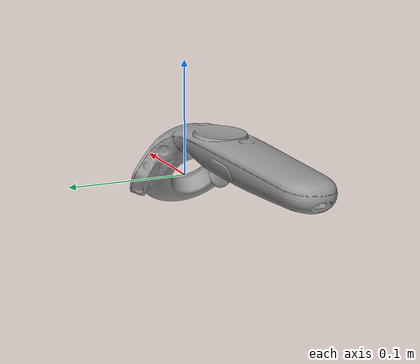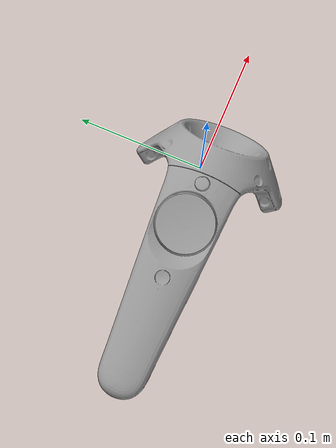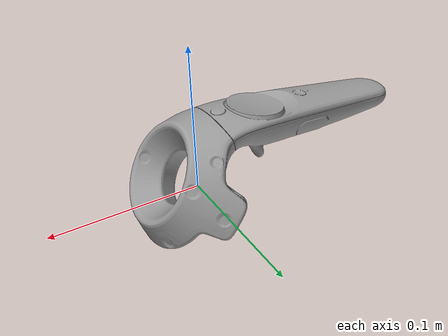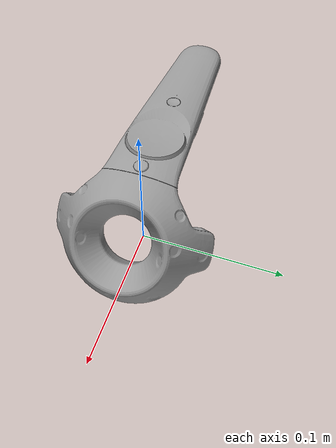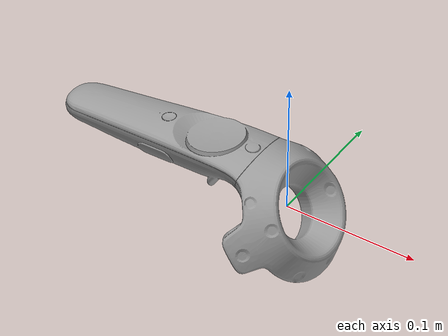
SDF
<?xml version='1.0'?>
<sdf version='1.6'>
  <model name='vr_controller_r'>
    <pose frame=''>0 0 0 0 0 0</pose>
    <static>1</static>
    <allow_auto_disable>1</allow_auto_disable>

    <link name='link'>
      <pose frame=''>0 0 0 0 -0 0</pose>
      <visual name='visual'>
        <pose frame=''>0 -0.01 0 0 -0 0</pose>
        <geometry>
          <mesh>
            <uri>model://vr_controller_r/meshes/right.dae</uri>
            <scale>1 1 1</scale>
          </mesh>
        </geometry>

        <material>
          <lighting>1</lighting>
          <script>
            <uri>file://media/materials/scripts/gazebo.material</uri>
            <name>Gazebo/Grey</name>
          </script>
          <shader type='vertex'>
            <normal_map>__default__</normal_map>
          </shader>
          <ambient>0.3 0.3 0.3 1</ambient>
          <diffuse>0.7 0.7 0.7 1</diffuse>
          <specular>0.01 0.01 0.01 1</specular>
          <emissive>0 0 0 1</emissive>
        </material>

      </visual>

      <collision name='collision'>
        <laser_retro>0</laser_retro>
        <max_contacts>10</max_contacts>
        <pose frame=''>0 0 0 0 -0 0</pose>
        <geometry>
          <box>
            <size>0.01 0.01 0.01</size>
          </box>
        </geometry>
      </collision>
    </link>
  </model>
</sdf>
